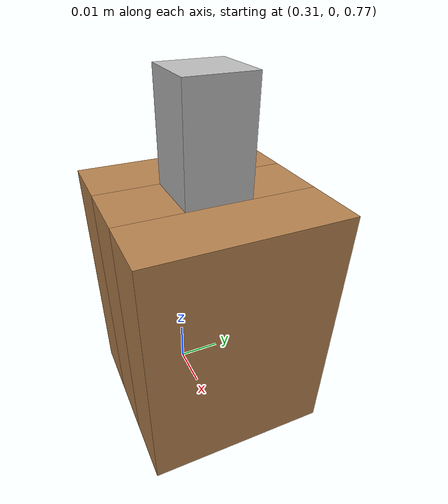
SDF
<?xml version='1.0'?>
<sdf version='1.6'>

    <model name="nail">
				<pose> 0 0 0.775 0 0 0 </pose>

<!-- nail -->

        <link name='nail'>
          <pose>0.325 0 0.06 0 0 0</pose>
            <inertial>
              <mass>0.1</mass>
            </inertial>
            <collision name='nail_collision'>
              <geometry>
                <box>
                  <size>.0125 .0125 .02</size>
                </box>
              </geometry>
              <surface>
                <friction>
                  <ode>
                    <mu>0.5</mu>
                    <mu2>0.5</mu2>
                  </ode>
                </friction>
              </surface>
            </collision>
            <visual name='nail_visual'>
              <geometry>
                <box>
                  <size>.0125 .0125 .02</size>
                </box>
              </geometry>
            </visual>
        </link>

<!-- wooden piece -->

				<model name='wooden_piece'>
				<static>true</static>

        <link name='bigbox1'>
          <pose>0.3125 0 0.025 0 0 0</pose>

            <collision name='bigbox1_collision'>
              <geometry>
                <box>
                  <size>.0125 .0375 .05</size>
                </box>
              </geometry>
              <surface>
                <friction>
                  <ode>
                    <mu>2000</mu>
                    <mu2>2000</mu2>
                  </ode>
                </friction>
              </surface>
            </collision>

            <visual name='bigbox1_visual'>
              <geometry>
                <box>
                  <size>.0125 .0375 .05</size>
                </box>
              </geometry>
              <material>
                <script>
                  <uri>file://media/materials/scripts/gazebo.material</uri>
                  <name>Gazebo/WoodFloor</name>
                </script>
              </material>
            </visual>
        </link>

        <link name='bigbox2'>
          <pose>0.3375 0 0.025 0 0 0</pose>

            <collision name='bigbox2_collision'>
              <geometry>
                <box>
                  <size>.0125 .0375 .05</size>
                </box>
              </geometry>
              <surface>
                <friction>
                  <ode>
                    <mu>2000</mu>
                    <mu2>2000</mu2>
                  </ode>
                </friction>
              </surface>
            </collision>

            <visual name='bigbox2_visual'>
              <geometry>
                <box>
                  <size>.0125 .0375 .05</size>
                </box>
              </geometry>
              <material>
                <script>
                  <uri>file://media/materials/scripts/gazebo.material</uri>
                  <name>Gazebo/WoodFloor</name>
                </script>
              </material>
            </visual>
        </link>

        <link name='smallbox1'>
          <pose>0.325 -0.0125 0.025 0 0 0</pose>

            <collision name='smallbox1_collision'>
              <geometry>
                <box>
                  <size>.0125 .0125 .05</size>
                </box>
              </geometry>
              <surface>
                <friction>
                  <ode>
                    <mu>2000</mu>
                    <mu2>2000</mu2>
                  </ode>
                </friction>
              </surface>
            </collision>

            <visual name='smallbox1_visual'>
              <geometry>
                <box>
                  <size>.0125 .0125 .05</size>
                </box>
              </geometry>
              <material>
                <script>
                  <uri>file://media/materials/scripts/gazebo.material</uri>
                  <name>Gazebo/WoodFloor</name>
                </script>
              </material>
            </visual>
        </link>

        <link name='smallbox2'>
          <pose>0.325 0.0125 0.025 0 0 0</pose>

            <collision name='smallbox2_collision'>
              <geometry>
                <box>
                  <size>.0125 .0125 .05</size>
                </box>
              </geometry>
              <surface>
                <friction>
                  <ode>
                    <mu>2000</mu>
                    <mu2>2000</mu2>
                  </ode>
                </friction>
              </surface>
            </collision>

            <visual name='smallbox2_visual'>
              <geometry>
                <box>
                  <size>.0125 .0125 .05</size>
                </box>
              </geometry>
              <material>
                <script>
                  <uri>file://media/materials/scripts/gazebo.material</uri>
                  <name>Gazebo/WoodFloor</name>
                </script>
              </material>
            </visual>
        </link>
				</model>

<!-- Joints -->

        <joint name="nail_big1_joint" type="prismatic">
          <pose>0 0 0.03 0 0 0</pose>
          <parent>nail</parent>
          <child>bigbox1</child>
          <axis>
            <xyz>0 0 1</xyz>
            <dynamics>
              <damping>10</damping>
              <friction>300</friction>
            </dynamics>
          </axis>
        </joint>

        <joint name="nail_big2_joint" type="prismatic">
          <pose>0 0 0.03 0 0 0</pose>
          <parent>nail</parent>
          <child>bigbox2</child>
          <axis>
            <xyz>0 0 1</xyz>
            <dynamics>
              <damping>10</damping>
              <friction>300</friction>
            </dynamics>
          </axis>
        </joint>

        <joint name="nail_small1_joint" type="prismatic">
          <pose>0 0 0.03 0 0 0</pose>
          <parent>nail</parent>
          <child>smallbox1</child>
          <axis>
            <xyz>0 0 1</xyz>
            <dynamics>
              <damping>10</damping>
              <friction>300</friction>
            </dynamics>
          </axis>
        </joint>

        <joint name="nail_small2_joint" type="prismatic">
          <pose>0 0 0.03 0 0 0</pose>
          <parent>nail</parent>
          <child>smallbox2</child>
          <axis>
            <xyz>0 0 1</xyz>
            <dynamics>
              <damping>10</damping>
              <friction>300</friction>
            </dynamics>
          </axis>
        </joint>

    </model>
</sdf>
